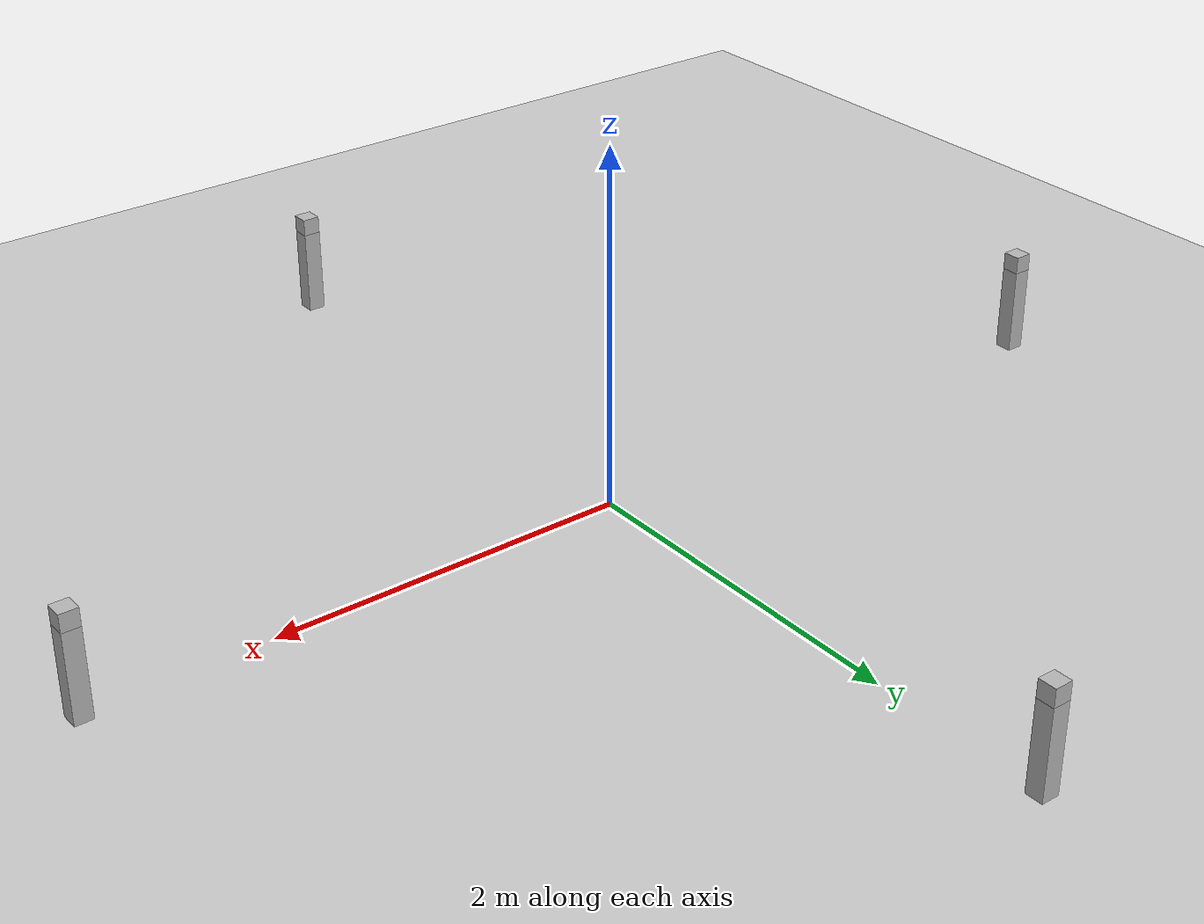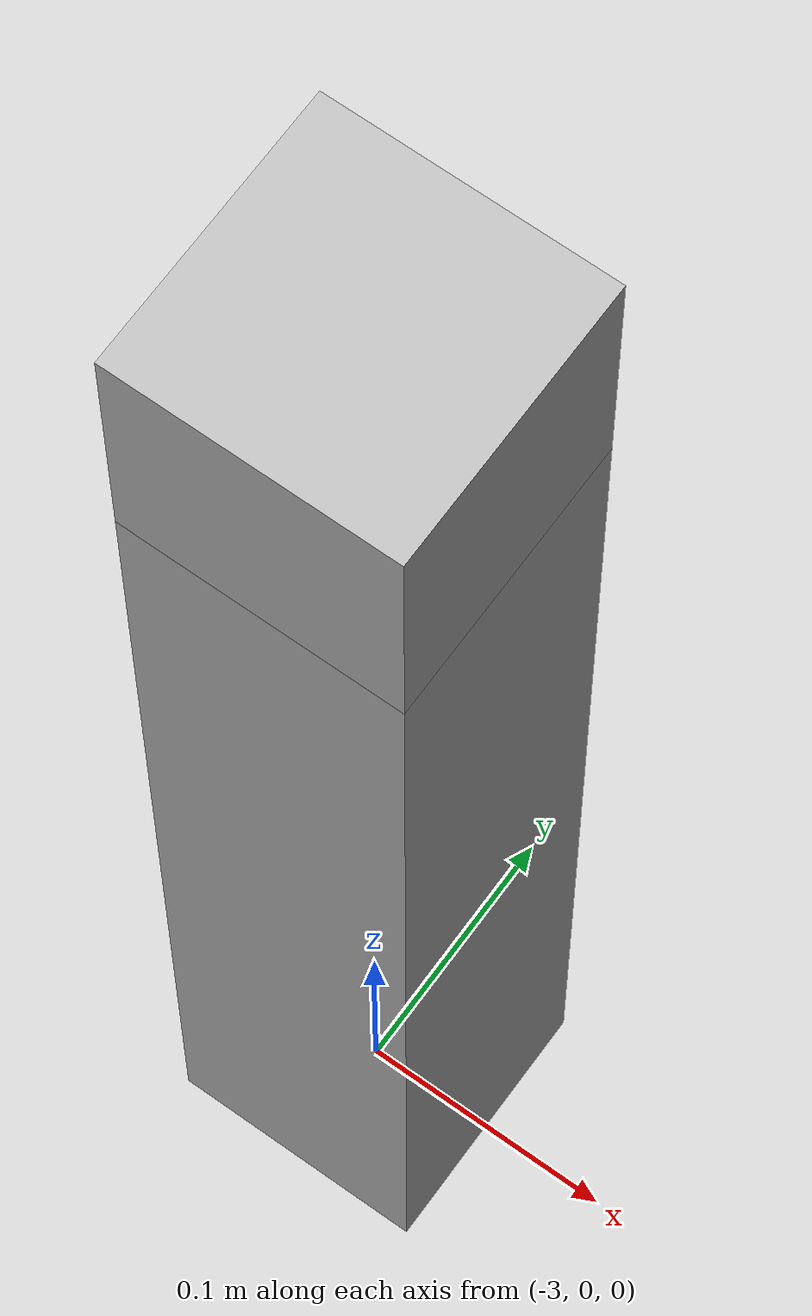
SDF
<sdf version="1.10">
 <world name="camera_sensor">
  <physics name="1ms" type="ignored">
   <max_step_size>0.001</max_step_size>
   <real_time_factor>1</real_time_factor>
   <real_time_update_rate>1000</real_time_update_rate>
  </physics>
  <plugin name="gz::sim::systems::Physics" filename="gz-sim-physics-system"/>
  <plugin name="gz::sim::systems::Sensors" filename="gz-sim-sensors-system">
   <render_engine>ogre2</render_engine>
  </plugin>
  <plugin name="gz::sim::systems::UserCommands" filename="gz-sim-user-commands-system"/>
  <plugin name="gz::sim::systems::SceneBroadcaster" filename="gz-sim-scene-broadcaster-system"/>
  <scene>
   <ambient>1 1 1 1</ambient>
   <background>0.800000012 0.800000012 0.800000012 1</background>
   <grid>true</grid>
   <shadows>true</shadows>
  </scene>
  <gravity>0 0 -9.8000000000000007</gravity>
  <magnetic_field>5.5644999999999998e-06 2.2875799999999999e-05 -4.2388400000000002e-05</magnetic_field>
  <atmosphere type="adiabatic"/>
  <model name="ground_plane">
   <static>true</static>
   <link name="link">
    <collision name="collision">
     <geometry><plane><normal>0 0 1</normal><size>100 100</size></plane></geometry>
    </collision>
    <visual name="visual">
     <geometry><plane><normal>0 0 1</normal><size>100 100</size></plane></geometry>
     <material>
      <ambient>0.800000012 0.800000012 0.800000012 1</ambient>
      <diffuse>0.800000012 0.800000012 0.800000012 1</diffuse>
      <specular>0.800000012 0.800000012 0.800000012 1</specular>
     </material>
    </visual>
    <inertial>
     <mass>1</mass>
     <inertia><ixx>1</ixx><ixy>0</ixy><ixz>0</ixz><iyy>1</iyy><iyz>0</iyz><izz>1</izz></inertia>
    </inertial>
   </link>
  </model>
  <model name="camera1_stand">
   <pose>3.0 0 0.25 0 0 0</pose>
   <static>true</static>
   <link name="link">
    <inertial>
     <mass>1.0</mass>
     <inertia><ixx>0.083</ixx><ixy>0.0</ixy><ixz>0.0</ixz><iyy>0.083</iyy><iyz>0.0</iyz><izz>0.083</izz></inertia>
    </inertial>
    <collision name="collision"><geometry><box><size>0.1 0.1 0.5</size></box></geometry></collision>
    <visual name="visual"><geometry><box><size>0.1 0.1 0.5</size></box></geometry></visual>
   </link>
  </model>
  <model name="camera1">
   <pose>3 0 0.55 0 0 3.1400000000000001</pose>
   <link name="link">
    <inertial>
     <mass>0.10000000000000001</mass>
     <inertia>
      <ixx>0.00016666700000000001</ixx>
      <iyy>0.00016666700000000001</iyy>
      <izz>0.00016666700000000001</izz>
      <ixy>0</ixy>
      <ixz>0</ixz>
      <iyz>0</iyz>
     </inertia>
    </inertial>
    <collision name="collision"><geometry><box><size>0.1 0.1 0.1</size></box></geometry></collision>
    <visual name="visual"><geometry><box><size>0.1 0.1 0.1</size></box></geometry></visual>
    <sensor name="camera" type="camera">
     <topic>camera1</topic>
     <update_rate>30</update_rate>
     <enable_metrics>false</enable_metrics>
     <camera>
      <horizontal_fov>1.0469999999999999</horizontal_fov>
      <image><width>320</width><height>240</height><format>RGB_INT8</format><anti_aliasing>4</anti_aliasing></image>
      <camera_info_topic>__default__</camera_info_topic>
      <triggered>false</triggered>
      <clip><near>0.10000000000000001</near><far>100</far></clip>
      <save enabled="false"><path>__default__</path></save>
      <visibility_mask>4294967295</visibility_mask>
      <noise><type>none</type><mean>0</mean><stddev>0</stddev></noise>
      <distortion><k1>0</k1><k2>0</k2><k3>0</k3><p1>0</p1><p2>0</p2><center>0.5 0.5</center></distortion>
      <lens>
       <type>stereographic</type>
       <scale_to_hfov>true</scale_to_hfov>
       <cutoff_angle>1.5707963267948966</cutoff_angle>
       <env_texture_size>256</env_texture_size>
      </lens>
     </camera>
    </sensor>
   </link>
   <static>false</static>
  </model>
  <model name="camera2_stand">
   <pose>0 3.0 0.25 0 0 0</pose>
   <static>true</static>
   <link name="link">
    <inertial>
     <mass>1.0</mass>
     <inertia><ixx>0.083</ixx><ixy>0.0</ixy><ixz>0.0</ixz><iyy>0.083</iyy><iyz>0.0</iyz><izz>0.083</izz></inertia>
    </inertial>
    <collision name="collision"><geometry><box><size>0.1 0.1 0.5</size></box></geometry></collision>
    <visual name="visual"><geometry><box><size>0.1 0.1 0.5</size></box></geometry></visual>
   </link>
  </model>
  <model name="camera2">
   <pose>0 3 0.55 0 0 -1.57</pose>
   <link name="link">
    <inertial>
     <mass>0.10000000000000001</mass>
     <inertia>
      <ixx>0.00016666700000000001</ixx>
      <iyy>0.00016666700000000001</iyy>
      <izz>0.00016666700000000001</izz>
      <ixy>0</ixy>
      <ixz>0</ixz>
      <iyz>0</iyz>
     </inertia>
    </inertial>
    <collision name="collision"><geometry><box><size>0.1 0.1 0.1</size></box></geometry></collision>
    <visual name="visual"><geometry><box><size>0.1 0.1 0.1</size></box></geometry></visual>
    <sensor name="camera" type="camera">
     <topic>camera2</topic>
     <update_rate>30</update_rate>
     <enable_metrics>false</enable_metrics>
     <camera>
      <horizontal_fov>1.0469999999999999</horizontal_fov>
      <image><width>320</width><height>240</height><format>RGB_INT8</format><anti_aliasing>4</anti_aliasing></image>
      <camera_info_topic>__default__</camera_info_topic>
      <triggered>false</triggered>
      <clip><near>0.10000000000000001</near><far>100</far></clip>
      <save enabled="false"><path>__default__</path></save>
      <visibility_mask>4294967295</visibility_mask>
      <noise><type>none</type><mean>0</mean><stddev>0</stddev></noise>
      <distortion><k1>0</k1><k2>0</k2><k3>0</k3><p1>0</p1><p2>0</p2><center>0.5 0.5</center></distortion>
      <lens>
       <type>stereographic</type>
       <scale_to_hfov>true</scale_to_hfov>
       <cutoff_angle>1.5707963267948966</cutoff_angle>
       <env_texture_size>256</env_texture_size>
      </lens>
     </camera>
    </sensor>
   </link>
   <static>false</static>
  </model>
  <model name="camera3_stand">
   <pose>-3.0 0 0.25 0 0 0</pose>
   <static>true</static>
   <link name="link">
    <inertial>
     <mass>1.0</mass>
     <inertia><ixx>0.083</ixx><ixy>0.0</ixy><ixz>0.0</ixz><iyy>0.083</iyy><iyz>0.0</iyz><izz>0.083</izz></inertia>
    </inertial>
    <collision name="collision"><geometry><box><size>0.1 0.1 0.5</size></box></geometry></collision>
    <visual name="visual"><geometry><box><size>0.1 0.1 0.5</size></box></geometry></visual>
   </link>
  </model>
  <model name="camera3">
   <pose>-3.0 0 0.55 0 0 0</pose>
   <link name="link">
    <inertial>
     <mass>0.10000000000000001</mass>
     <inertia>
      <ixx>0.00016666700000000001</ixx>
      <iyy>0.00016666700000000001</iyy>
      <izz>0.00016666700000000001</izz>
      <ixy>0</ixy>
      <ixz>0</ixz>
      <iyz>0</iyz>
     </inertia>
    </inertial>
    <collision name="collision"><geometry><box><size>0.1 0.1 0.1</size></box></geometry></collision>
    <visual name="visual"><geometry><box><size>0.1 0.1 0.1</size></box></geometry></visual>
    <sensor name="camera" type="camera">
     <topic>camera3</topic>
     <update_rate>30</update_rate>
     <enable_metrics>false</enable_metrics>
     <camera>
      <horizontal_fov>1.0469999999999999</horizontal_fov>
      <image><width>320</width><height>240</height><format>RGB_INT8</format><anti_aliasing>4</anti_aliasing></image>
      <camera_info_topic>__default__</camera_info_topic>
      <triggered>false</triggered>
      <clip><near>0.10000000000000001</near><far>100</far></clip>
      <save enabled="false"><path>__default__</path></save>
      <visibility_mask>4294967295</visibility_mask>
      <noise><type>none</type><mean>0</mean><stddev>0</stddev></noise>
      <distortion><k1>0</k1><k2>0</k2><k3>0</k3><p1>0</p1><p2>0</p2><center>0.5 0.5</center></distortion>
      <lens>
       <type>stereographic</type>
       <scale_to_hfov>true</scale_to_hfov>
       <cutoff_angle>1.5707963267948966</cutoff_angle>
       <env_texture_size>256</env_texture_size>
      </lens>
     </camera>
    </sensor>
   </link>
   <static>false</static>
  </model>
  <model name="camera4_stand">
   <pose>0 -3.0 0.25 0 0 0</pose>
   <static>true</static>
   <link name="link">
    <inertial>
     <mass>1.0</mass>
     <inertia><ixx>0.083</ixx><ixy>0.0</ixy><ixz>0.0</ixz><iyy>0.083</iyy><iyz>0.0</iyz><izz>0.083</izz></inertia>
    </inertial>
    <collision name="collision"><geometry><box><size>0.1 0.1 0.5</size></box></geometry></collision>
    <visual name="visual"><geometry><box><size>0.1 0.1 0.5</size></box></geometry></visual>
   </link>
  </model>
  <model name="camera4">
   <pose>0 -3 0.55 0 0 1.57</pose>
   <link name="link">
    <inertial>
     <mass>0.10000000000000001</mass>
     <inertia>
      <ixx>0.00016666700000000001</ixx>
      <iyy>0.00016666700000000001</iyy>
      <izz>0.00016666700000000001</izz>
      <ixy>0</ixy>
      <ixz>0</ixz>
      <iyz>0</iyz>
     </inertia>
    </inertial>
    <collision name="collision"><geometry><box><size>0.1 0.1 0.1</size></box></geometry></collision>
    <visual name="visual"><geometry><box><size>0.1 0.1 0.1</size></box></geometry></visual>
    <sensor name="camera" type="camera">
     <topic>camera4</topic>
     <update_rate>30</update_rate>
     <enable_metrics>false</enable_metrics>
     <camera>
      <horizontal_fov>1.0469999999999999</horizontal_fov>
      <image><width>320</width><height>240</height><format>RGB_INT8</format><anti_aliasing>4</anti_aliasing></image>
      <camera_info_topic>__default__</camera_info_topic>
      <triggered>false</triggered>
      <clip><near>0.10000000000000001</near><far>100</far></clip>
      <save enabled="false"><path>__default__</path></save>
      <visibility_mask>4294967295</visibility_mask>
      <noise><type>none</type><mean>0</mean><stddev>0</stddev></noise>
      <distortion><k1>0</k1><k2>0</k2><k3>0</k3><p1>0</p1><p2>0</p2><center>0.5 0.5</center></distortion>
      <lens>
       <type>stereographic</type>
       <scale_to_hfov>true</scale_to_hfov>
       <cutoff_angle>1.5707963267948966</cutoff_angle>
       <env_texture_size>256</env_texture_size>
      </lens>
     </camera>
    </sensor>
   </link>
   <static>false</static>
  </model>
  <light name="sun" type="directional">
   <pose>0 0 10 0 0 0</pose>
   <intensity>1</intensity>
   <direction>-0.5 0.10000000000000001 -0.90000000000000002</direction>
   <diffuse>0.800000012 0.800000012 0.800000012 1</diffuse>
   <specular>0.800000012 0.800000012 0.800000012 1</specular>
   <attenuation>
    <range>1000</range>
    <linear>0.0099999997764825821</linear>
    <constant>0.89999997615814209</constant>
    <quadratic>0.0010000000474974513</quadratic>
   </attenuation>
   <spot><inner_angle>0</inner_angle><outer_angle>0</outer_angle><falloff>0</falloff></spot>
  </light>
 </world>
</sdf>
